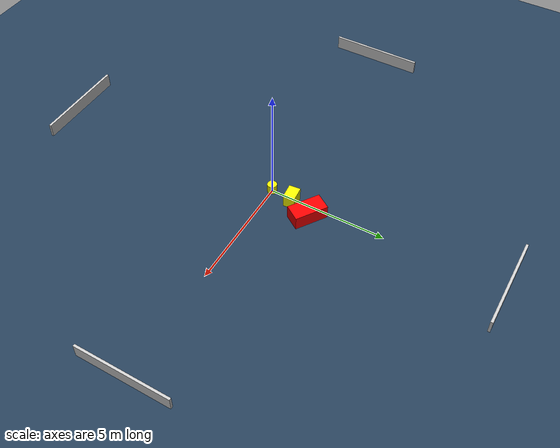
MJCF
<?xml version="1.0" ?>
<mujoco model="generated_environment">
  <option timestep="0.01" integrator="RK4" cone="elliptic"/>
  <default>
    <geom density="1"/>
  </default>
  <asset>
    <texture builtin="gradient" height="3072" name="skybox" rgb1="0.3 0.5 0.7" rgb2="0 0 0" type="skybox" width="512"/>
    <texture builtin="checker" height="300" name="groundplane" rgb1="0.2 0.3 0.4" rgb2="0.1 0.2 0.3" type="2d" width="300"/>
    <material name="groundplane" reflectance="0.2" texrepeat="5 5" texture="groundplane"/>
  </asset>
  <worldbody>
    <light dir="0 0 -1" directional="true" pos="0 0 1.5"/>
    <geom condim="3" friction="0.5 0.005 0.001" material="groundplane" name="floor" pos="0 0 0" size="0 0 0.05" type="plane"/>
    <body name="walls">
      <geom name="wall_1" condim="4" pos="-10.0 0.0 0.3" rgba="0.800000011920929 0.800000011920929 0.800000011920929 1.0" size="0.05 2.0 0.3" type="box"/>
      <geom name="wall_2" condim="4" pos="10.0 0.0 0.3" rgba="0.800000011920929 0.800000011920929 0.800000011920929 1.0" size="0.05 2.0 0.3" type="box"/>
      <geom name="wall_3" condim="4" pos="0.0 -10.0 0.3" rgba="0.800000011920929 0.800000011920929 0.800000011920929 1.0" size="2.0 0.05 0.3" type="box"/>
      <geom name="wall_4" condim="4" pos="0.0 10.0 0.3" rgba="0.800000011920929 0.800000011920929 0.800000011920929 1.0" size="2.0 0.05 0.3" type="box"/>
    </body>
    <body name="robot">
      <joint name="joint_x" type="slide" pos="0 0 0" axis="1 0 0"/>
      <joint name="joint_y" type="slide" pos="0 0 0" axis="0 1 0"/>
      <geom name="robot" type="cylinder" pos="0.0 0.0 0.2" size="0.2 0.2 0.0" mass="5.0" friction="1.0 0.005 0.0001" condim="4" rgba="1.0 1.0 0.0 1.0"/>
    </body>
    <body name="obstacle_1_movable">
      <geom name="obstacle_1_movable" condim="4" pos="0.14289842475528391 1.0012668433226326 0.3" euler="0 0 275.95017076470884" friction="0.0 0.005 0.001" rgba="1.0 1.0 0.0 1.0" size="0.24163931037727457 0.3086168103897613 0.3" type="box" mass="0.1"/>
      <joint type="free"/>
    </body>
    <body name="obstacle_2_static">
      <geom name="obstacle_2_static" condim="4" pos="0.5142251893526522 1.9161038898708849 0.3" euler="0 0 326.47664604529524" friction="0.0 0.005 0.001" rgba="1.0 0.0 0.0 1.0" size="0.7104062978028627 0.36786920663242795 0.3" type="box"/>
    </body>
  </worldbody>
  <actuator>
    <motor name="actuator_x" joint="joint_x" gear="1" ctrlrange="-1 1"/>
    <motor name="actuator_y" joint="joint_y" gear="1" ctrlrange="-1 1"/>
  </actuator>
</mujoco>
